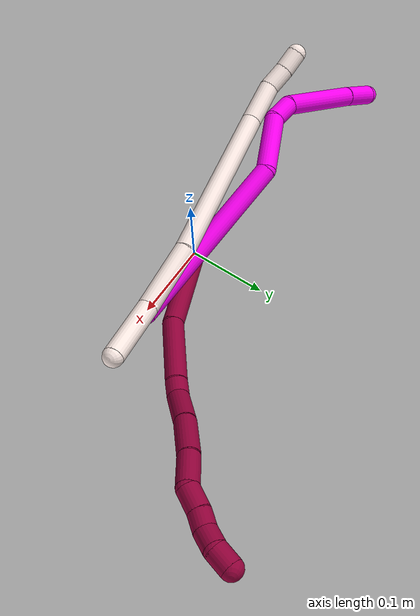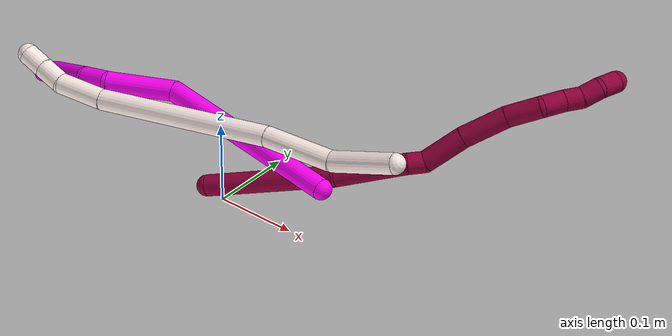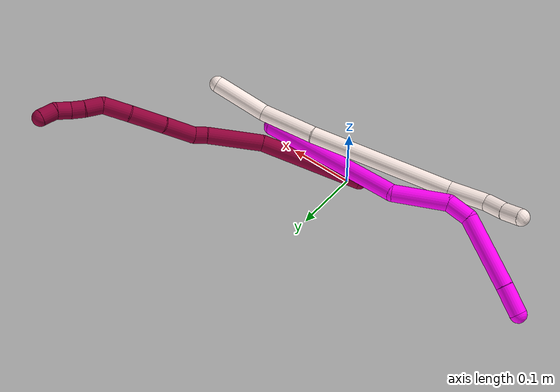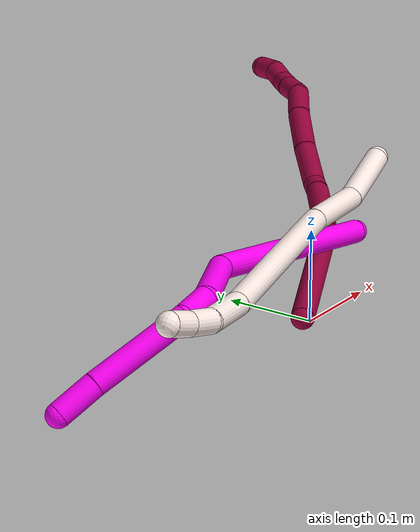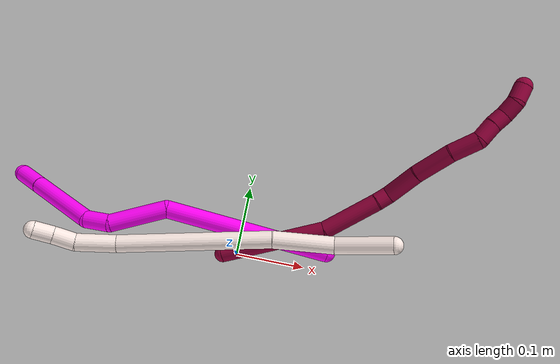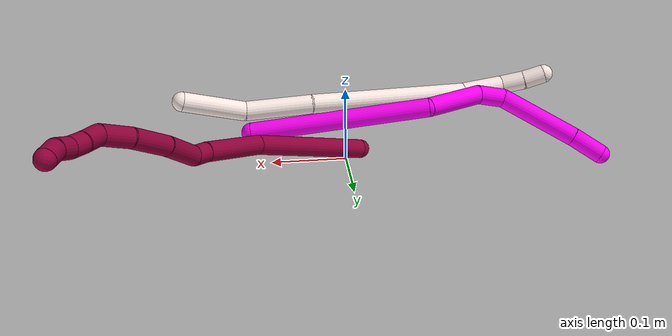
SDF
<sdf version="1.7">
 <world name="default">
  <model name="photoneo_s_sensor">
   <static>1</static>
   <pose>0 0 2 1.57079 1.57079 3.14159</pose>
   <link name="link">
    <inertial><mass>0.1</mass></inertial>
    <sensor name="sensor" type="depth">
     <update_rate>30</update_rate>
     <camera>
      <horizontal_fov>1.22</horizontal_fov>
      <image><width>1920</width><height>1200</height><format>B8G8R8</format></image>
      <clip><near>0.1</near><far>4</far></clip>
      <depth_camera><output>points</output></depth_camera>
     </camera>
     <plugin name="camera_plugin" filename="libgazebo_ros_depth_camera.so">
      <baseline>0.2</baseline>
      <alwaysOn>1</alwaysOn>
      <updateRate>0.0</updateRate>
      <cameraName>camera_ir</cameraName>
      <imageTopicName>/camera/color/image_raw</imageTopicName>
      <cameraInfoTopicName>/camera/color/camera_info</cameraInfoTopicName>
      <depthImageTopicName>/camera/depth/image_raw</depthImageTopicName>
      <depthImageCameraInfoTopicName>/camera/depth/camera_info</depthImageCameraInfoTopicName>
      <pointCloudTopicName>/camera/depth/points</pointCloudTopicName>
      <frameName>fr_optical</frameName>
      <pointCloudCutoff>0.1</pointCloudCutoff>
      <pointCloudCutoffMax>2.0</pointCloudCutoffMax>
      <distortionK1>0</distortionK1>
      <distortionK2>0</distortionK2>
      <distortionK3>0</distortionK3>
      <distortionT1>0</distortionT1>
      <distortionT2>0</distortionT2>
      <CxPrime>0</CxPrime>
      <Cx>0</Cx>
      <Cy>0</Cy>
      <focalLength>0</focalLength>
      <hackBaseline>0</hackBaseline>
     </plugin>
    </sensor>
   </link>
  </model>
  <model name="bin">
   <static>1</static>
   <link name="bottom">
    <collision name="collision-bottom">
     <pose>0 0 -0.01 0 -0 0</pose>
     <geometry><box><size>0.8 0.6 0.02</size></box></geometry>
     <surface>
      <friction><ode><mu>100</mu><mu2>100</mu2></ode></friction>
      <contact><collide_bitmask>65535</collide_bitmask></contact>
     </surface>
    </collision>
   </link>
   <link name="west_wall">
    <collision name="collision-west_wall">
     <pose>-0.41 0 0.1 0 -0 0</pose>
     <geometry><box><size>0.02 0.6 0.2</size></box></geometry>
     <surface>
      <friction><ode><mu>100</mu><mu2>100</mu2></ode></friction>
      <contact><collide_bitmask>65535</collide_bitmask></contact>
     </surface>
    </collision>
   </link>
   <link name="east_wall">
    <collision name="collision-east_wall">
     <pose>0.41 0 0.1 0 -0 0</pose>
     <geometry><box><size>0.02 0.6 0.2</size></box></geometry>
     <surface>
      <friction><ode><mu>100</mu><mu2>100</mu2></ode></friction>
      <contact><collide_bitmask>65535</collide_bitmask></contact>
     </surface>
    </collision>
   </link>
   <link name="south_wall">
    <collision name="collision-south_wall">
     <pose>0 -0.31 0.1 0 -0 0</pose>
     <geometry><box><size>0.8 0.02 0.2</size></box></geometry>
     <surface>
      <friction><ode><mu>100</mu><mu2>100</mu2></ode></friction>
      <contact><collide_bitmask>65535</collide_bitmask></contact>
     </surface>
    </collision>
   </link>
   <link name="north_wall">
    <collision name="collision-north_wall">
     <pose>0 0.31 0.1 0 -0 0</pose>
     <geometry><box><size>0.8 0.02 0.2</size></box></geometry>
     <surface>
      <friction><ode><mu>100</mu><mu2>100</mu2></ode></friction>
      <contact><collide_bitmask>65535</collide_bitmask></contact>
     </surface>
    </collision>
   </link>
  </model>
  <model name="8">
   <static>0</static>
   <link name="8">
    <collision name="collision-cylinder-e_1_1_4">
     <pose>0.016828 -0.002853 0.07586 0.037586 0.218145 0.004116</pose>
     <geometry><cylinder><radius>0.0125</radius><length>0.155513</length></cylinder></geometry>
     <surface>
      <friction><ode><mu>1.16</mu><mu2>1.16</mu2><slip1>0</slip1><slip2>0</slip2></ode></friction>
      <contact><ode><kp>1e+06</kp><kd>1</kd><max_vel>0</max_vel><min_depth>0.001</min_depth></ode></contact>
     </surface>
    </collision>
    <visual name="visual-cylinder-e_1_1_4">
     <pose>0.016828 -0.002853 0.07586 0.037586 0.218145 0.004116</pose>
     <geometry><cylinder><radius>0.0125</radius><length>0.155513</length></cylinder></geometry>
     <material><ambient>0.584314 0 0.227451 1</ambient></material>
    </visual>
    <collision name="collision-cylinder-e_2_4_5">
     <pose>0.040302 0.003805 0.191992 -0.231912 0.159247 -0.018588</pose>
     <geometry><cylinder><radius>0.0125</radius><length>0.08382</length></cylinder></geometry>
     <surface>
      <friction><ode><mu>1.16</mu><mu2>1.16</mu2><slip1>0</slip1><slip2>0</slip2></ode></friction>
      <contact><ode><kp>1e+06</kp><kd>1</kd><max_vel>0</max_vel><min_depth>0.001</min_depth></ode></contact>
     </surface>
    </collision>
    <visual name="visual-cylinder-e_2_4_5">
     <pose>0.040302 0.003805 0.191992 -0.231912 0.159247 -0.018588</pose>
     <geometry><cylinder><radius>0.0125</radius><length>0.08382</length></cylinder></geometry>
     <material><ambient>0.584314 0 0.227451 1</ambient></material>
    </visual>
    <collision name="collision-cylinder-e_3_5_6">
     <pose>0.0493 0.016608 0.241469 -0.343413 0.236095 -0.041128</pose>
     <geometry><cylinder><radius>0.0125</radius><length>0.02011</length></cylinder></geometry>
     <surface>
      <friction><ode><mu>1.16</mu><mu2>1.16</mu2><slip1>0</slip1><slip2>0</slip2></ode></friction>
      <contact><ode><kp>1e+06</kp><kd>1</kd><max_vel>0</max_vel><min_depth>0.001</min_depth></ode></contact>
     </surface>
    </collision>
    <visual name="visual-cylinder-e_3_5_6">
     <pose>0.0493 0.016608 0.241469 -0.343413 0.236095 -0.041128</pose>
     <geometry><cylinder><radius>0.0125</radius><length>0.02011</length></cylinder></geometry>
     <material><ambient>0.584314 0 0.227451 1</ambient></material>
    </visual>
    <collision name="collision-cylinder-e_4_6_7">
     <pose>0.045306 0.023976 0.275338 -0.163825 -0.248577 0.020512</pose>
     <geometry><cylinder><radius>0.0125</radius><length>0.051583</length></cylinder></geometry>
     <surface>
      <friction><ode><mu>1.16</mu><mu2>1.16</mu2><slip1>0</slip1><slip2>0</slip2></ode></friction>
      <contact><ode><kp>1e+06</kp><kd>1</kd><max_vel>0</max_vel><min_depth>0.001</min_depth></ode></contact>
     </surface>
    </collision>
    <visual name="visual-cylinder-e_4_6_7">
     <pose>0.045306 0.023976 0.275338 -0.163825 -0.248577 0.020512</pose>
     <geometry><cylinder><radius>0.0125</radius><length>0.051583</length></cylinder></geometry>
     <material><ambient>0.584314 0 0.227451 1</ambient></material>
    </visual>
    <collision name="collision-cylinder-e_5_7_8">
     <pose>0.035735 0.031633 0.326872 -0.132435 -0.118427 0.007863</pose>
     <geometry><cylinder><radius>0.0125</radius><length>0.054596</length></cylinder></geometry>
     <surface>
      <friction><ode><mu>1.16</mu><mu2>1.16</mu2><slip1>0</slip1><slip2>0</slip2></ode></friction>
      <contact><ode><kp>1e+06</kp><kd>1</kd><max_vel>0</max_vel><min_depth>0.001</min_depth></ode></contact>
     </surface>
    </collision>
    <visual name="visual-cylinder-e_5_7_8">
     <pose>0.035735 0.031633 0.326872 -0.132435 -0.118427 0.007863</pose>
     <geometry><cylinder><radius>0.0125</radius><length>0.054596</length></cylinder></geometry>
     <material><ambient>0.584314 0 0.227451 1</ambient></material>
    </visual>
    <collision name="collision-cylinder-e_6_8_9">
     <pose>0.033373 0.03705 0.37397 -0.090574 0.04246 -0.001924</pose>
     <geometry><cylinder><radius>0.0125</radius><length>0.040659</length></cylinder></geometry>
     <surface>
      <friction><ode><mu>1.16</mu><mu2>1.16</mu2><slip1>0</slip1><slip2>0</slip2></ode></friction>
      <contact><ode><kp>1e+06</kp><kd>1</kd><max_vel>0</max_vel><min_depth>0.001</min_depth></ode></contact>
     </surface>
    </collision>
    <visual name="visual-cylinder-e_6_8_9">
     <pose>0.033373 0.03705 0.37397 -0.090574 0.04246 -0.001924</pose>
     <geometry><cylinder><radius>0.0125</radius><length>0.040659</length></cylinder></geometry>
     <material><ambient>0.584314 0 0.227451 1</ambient></material>
    </visual>
    <collision name="collision-cylinder-e_7_9_10">
     <pose>0.035427 0.046542 0.405087 -0.61275 0.089269 -0.028256</pose>
     <geometry><cylinder><radius>0.0125</radius><length>0.026727</length></cylinder></geometry>
     <surface>
      <friction><ode><mu>1.16</mu><mu2>1.16</mu2><slip1>0</slip1><slip2>0</slip2></ode></friction>
      <contact><ode><kp>1e+06</kp><kd>1</kd><max_vel>0</max_vel><min_depth>0.001</min_depth></ode></contact>
     </surface>
    </collision>
    <visual name="visual-cylinder-e_7_9_10">
     <pose>0.035427 0.046542 0.405087 -0.61275 0.089269 -0.028256</pose>
     <geometry><cylinder><radius>0.0125</radius><length>0.026727</length></cylinder></geometry>
     <material><ambient>0.584314 0 0.227451 1</ambient></material>
    </visual>
    <collision name="collision-cylinder-e_8_10_11">
     <pose>0.038386 0.058998 0.42488 -0.494512 0.172976 -0.043765</pose>
     <geometry><cylinder><radius>0.0125</radius><length>0.02054</length></cylinder></geometry>
     <surface>
      <friction><ode><mu>1.16</mu><mu2>1.16</mu2><slip1>0</slip1><slip2>0</slip2></ode></friction>
      <contact><ode><kp>1e+06</kp><kd>1</kd><max_vel>0</max_vel><min_depth>0.001</min_depth></ode></contact>
     </surface>
    </collision>
    <visual name="visual-cylinder-e_8_10_11">
     <pose>0.038386 0.058998 0.42488 -0.494512 0.172976 -0.043765</pose>
     <geometry><cylinder><radius>0.0125</radius><length>0.02054</length></cylinder></geometry>
     <material><ambient>0.584314 0 0.227451 1</ambient></material>
    </visual>
    <collision name="collision-cylinder-e_9_11_12">
     <pose>0.038658 0.069035 0.443876 -0.478579 -0.130802 0.031954</pose>
     <geometry><cylinder><radius>0.0125</radius><length>0.022934</length></cylinder></geometry>
     <surface>
      <friction><ode><mu>1.16</mu><mu2>1.16</mu2><slip1>0</slip1><slip2>0</slip2></ode></friction>
      <contact><ode><kp>1e+06</kp><kd>1</kd><max_vel>0</max_vel><min_depth>0.001</min_depth></ode></contact>
     </surface>
    </collision>
    <visual name="visual-cylinder-e_9_11_12">
     <pose>0.038658 0.069035 0.443876 -0.478579 -0.130802 0.031954</pose>
     <geometry><cylinder><radius>0.0125</radius><length>0.022934</length></cylinder></geometry>
     <material><ambient>0.584314 0 0.227451 1</ambient></material>
    </visual>
    <collision name="collision-cylinder-e_10_12_2">
     <pose>0.037378 0.083232 0.461578 -0.866732 0.018292 -0.008464</pose>
     <geometry><cylinder><radius>0.0125</radius><length>0.023518</length></cylinder></geometry>
     <surface>
      <friction><ode><mu>1.16</mu><mu2>1.16</mu2><slip1>0</slip1><slip2>0</slip2></ode></friction>
      <contact><ode><kp>1e+06</kp><kd>1</kd><max_vel>0</max_vel><min_depth>0.001</min_depth></ode></contact>
     </surface>
    </collision>
    <visual name="visual-cylinder-e_10_12_2">
     <pose>0.037378 0.083232 0.461578 -0.866732 0.018292 -0.008464</pose>
     <geometry><cylinder><radius>0.0125</radius><length>0.023518</length></cylinder></geometry>
     <material><ambient>0.584314 0 0.227451 1</ambient></material>
    </visual>
    <collision name="collision-sphere-2">
     <pose>0.037593 0.092194 0.469189 0 -0 0</pose>
     <geometry><sphere><radius>0.0125</radius></sphere></geometry>
     <surface>
      <friction><ode><mu>1.16</mu><mu2>1.16</mu2><slip1>0</slip1><slip2>0</slip2></ode></friction>
      <contact><ode><kp>1e+06</kp><kd>1</kd><max_vel>0</max_vel><min_depth>0.001</min_depth></ode></contact>
     </surface>
    </collision>
    <visual name="visual-sphere-2">
     <pose>0.037593 0.092194 0.469189 0 -0 0</pose>
     <geometry><sphere><radius>0.0125</radius></sphere></geometry>
     <material><ambient>0.584314 0 0.227451 1</ambient></material>
    </visual>
    <collision name="collision-sphere-12">
     <pose>0.037163 0.074271 0.453968 0 -0 0</pose>
     <geometry><sphere><radius>0.0125</radius></sphere></geometry>
     <surface>
      <friction><ode><mu>1.16</mu><mu2>1.16</mu2><slip1>0</slip1><slip2>0</slip2></ode></friction>
      <contact><ode><kp>1e+06</kp><kd>1</kd><max_vel>0</max_vel><min_depth>0.001</min_depth></ode></contact>
     </surface>
    </collision>
    <visual name="visual-sphere-12">
     <pose>0.037163 0.074271 0.453968 0 -0 0</pose>
     <geometry><sphere><radius>0.0125</radius></sphere></geometry>
     <material><ambient>0.584314 0 0.227451 1</ambient></material>
    </visual>
    <collision name="collision-sphere-11">
     <pose>0.040154 0.063799 0.433784 0 -0 0</pose>
     <geometry><sphere><radius>0.0125</radius></sphere></geometry>
     <surface>
      <friction><ode><mu>1.16</mu><mu2>1.16</mu2><slip1>0</slip1><slip2>0</slip2></ode></friction>
      <contact><ode><kp>1e+06</kp><kd>1</kd><max_vel>0</max_vel><min_depth>0.001</min_depth></ode></contact>
     </surface>
    </collision>
    <visual name="visual-sphere-11">
     <pose>0.040154 0.063799 0.433784 0 -0 0</pose>
     <geometry><sphere><radius>0.0125</radius></sphere></geometry>
     <material><ambient>0.584314 0 0.227451 1</ambient></material>
    </visual>
    <collision name="collision-sphere-10">
     <pose>0.036619 0.054197 0.415975 0 -0 0</pose>
     <geometry><sphere><radius>0.0125</radius></sphere></geometry>
     <surface>
      <friction><ode><mu>1.16</mu><mu2>1.16</mu2><slip1>0</slip1><slip2>0</slip2></ode></friction>
      <contact><ode><kp>1e+06</kp><kd>1</kd><max_vel>0</max_vel><min_depth>0.001</min_depth></ode></contact>
     </surface>
    </collision>
    <visual name="visual-sphere-10">
     <pose>0.036619 0.054197 0.415975 0 -0 0</pose>
     <geometry><sphere><radius>0.0125</radius></sphere></geometry>
     <material><ambient>0.584314 0 0.227451 1</ambient></material>
    </visual>
    <collision name="collision-sphere-9">
     <pose>0.034236 0.038887 0.394198 0 -0 0</pose>
     <geometry><sphere><radius>0.0125</radius></sphere></geometry>
     <surface>
      <friction><ode><mu>1.16</mu><mu2>1.16</mu2><slip1>0</slip1><slip2>0</slip2></ode></friction>
      <contact><ode><kp>1e+06</kp><kd>1</kd><max_vel>0</max_vel><min_depth>0.001</min_depth></ode></contact>
     </surface>
    </collision>
    <visual name="visual-sphere-9">
     <pose>0.034236 0.038887 0.394198 0 -0 0</pose>
     <geometry><sphere><radius>0.0125</radius></sphere></geometry>
     <material><ambient>0.584314 0 0.227451 1</ambient></material>
    </visual>
    <collision name="collision-sphere-4">
     <pose>0.033656 -0.005705 0.15172 0 -0 0</pose>
     <geometry><sphere><radius>0.0125</radius></sphere></geometry>
     <surface>
      <friction><ode><mu>1.16</mu><mu2>1.16</mu2><slip1>0</slip1><slip2>0</slip2></ode></friction>
      <contact><ode><kp>1e+06</kp><kd>1</kd><max_vel>0</max_vel><min_depth>0.001</min_depth></ode></contact>
     </surface>
    </collision>
    <visual name="visual-sphere-4">
     <pose>0.033656 -0.005705 0.15172 0 -0 0</pose>
     <geometry><sphere><radius>0.0125</radius></sphere></geometry>
     <material><ambient>0.584314 0 0.227451 1</ambient></material>
    </visual>
    <collision name="collision-sphere-1">
     <geometry><sphere><radius>0.0125</radius></sphere></geometry>
     <surface>
      <friction><ode><mu>1.16</mu><mu2>1.16</mu2><slip1>0</slip1><slip2>0</slip2></ode></friction>
      <contact><ode><kp>1e+06</kp><kd>1</kd><max_vel>0</max_vel><min_depth>0.001</min_depth></ode></contact>
     </surface>
    </collision>
    <visual name="visual-sphere-1">
     <geometry><sphere><radius>0.0125</radius></sphere></geometry>
     <material><ambient>0.584314 0 0.227451 1</ambient></material>
    </visual>
    <collision name="collision-sphere-8">
     <pose>0.03251 0.035212 0.353742 0 -0 0</pose>
     <geometry><sphere><radius>0.0125</radius></sphere></geometry>
     <surface>
      <friction><ode><mu>1.16</mu><mu2>1.16</mu2><slip1>0</slip1><slip2>0</slip2></ode></friction>
      <contact><ode><kp>1e+06</kp><kd>1</kd><max_vel>0</max_vel><min_depth>0.001</min_depth></ode></contact>
     </surface>
    </collision>
    <visual name="visual-sphere-8">
     <pose>0.03251 0.035212 0.353742 0 -0 0</pose>
     <geometry><sphere><radius>0.0125</radius></sphere></geometry>
     <material><ambient>0.584314 0 0.227451 1</ambient></material>
    </visual>
    <collision name="collision-sphere-5">
     <pose>0.046948 0.013316 0.232264 0 -0 0</pose>
     <geometry><sphere><radius>0.0125</radius></sphere></geometry>
     <surface>
      <friction><ode><mu>1.16</mu><mu2>1.16</mu2><slip1>0</slip1><slip2>0</slip2></ode></friction>
      <contact><ode><kp>1e+06</kp><kd>1</kd><max_vel>0</max_vel><min_depth>0.001</min_depth></ode></contact>
     </surface>
    </collision>
    <visual name="visual-sphere-5">
     <pose>0.046948 0.013316 0.232264 0 -0 0</pose>
     <geometry><sphere><radius>0.0125</radius></sphere></geometry>
     <material><ambient>0.584314 0 0.227451 1</ambient></material>
    </visual>
    <collision name="collision-sphere-6">
     <pose>0.051651 0.019899 0.250674 0 -0 0</pose>
     <geometry><sphere><radius>0.0125</radius></sphere></geometry>
     <surface>
      <friction><ode><mu>1.16</mu><mu2>1.16</mu2><slip1>0</slip1><slip2>0</slip2></ode></friction>
      <contact><ode><kp>1e+06</kp><kd>1</kd><max_vel>0</max_vel><min_depth>0.001</min_depth></ode></contact>
     </surface>
    </collision>
    <visual name="visual-sphere-6">
     <pose>0.051651 0.019899 0.250674 0 -0 0</pose>
     <geometry><sphere><radius>0.0125</radius></sphere></geometry>
     <material><ambient>0.584314 0 0.227451 1</ambient></material>
    </visual>
    <collision name="collision-sphere-7">
     <pose>0.038961 0.028054 0.300002 0 -0 0</pose>
     <geometry><sphere><radius>0.0125</radius></sphere></geometry>
     <surface>
      <friction><ode><mu>1.16</mu><mu2>1.16</mu2><slip1>0</slip1><slip2>0</slip2></ode></friction>
      <contact><ode><kp>1e+06</kp><kd>1</kd><max_vel>0</max_vel><min_depth>0.001</min_depth></ode></contact>
     </surface>
    </collision>
    <visual name="visual-sphere-7">
     <pose>0.038961 0.028054 0.300002 0 -0 0</pose>
     <geometry><sphere><radius>0.0125</radius></sphere></geometry>
     <material><ambient>0.584314 0 0.227451 1</ambient></material>
    </visual>
    <inertial>
     <pose>0.032265 0.021352 0.241178 0 -0 0</pose>
     <mass>0.5</mass>
     <inertia>
      <ixx>0.000412</ixx>
      <ixy>0</ixy>
      <ixz>0</ixz>
      <iyy>0.000422</iyy>
      <iyz>0</iyz>
      <izz>-4.7e-05</izz>
     </inertia>
    </inertial>
   </link>
   <pose>-0.019706 -0.003827 0.012171 -0.694116 0.966914 -0.251221</pose>
  </model>
  <model name="10">
   <static>0</static>
   <link name="10">
    <collision name="collision-cylinder-e_1_1_4">
     <pose>-0.041784 0.019411 0.107085 -0.179324 -0.366579 0.033328</pose>
     <geometry><cylinder><radius>0.0125</radius><length>0.233151</length></cylinder></geometry>
     <surface>
      <friction><ode><mu>1.16</mu><mu2>1.16</mu2><slip1>0</slip1><slip2>0</slip2></ode></friction>
      <contact><ode><kp>1e+06</kp><kd>1</kd><max_vel>0</max_vel><min_depth>0.001</min_depth></ode></contact>
     </surface>
    </collision>
    <visual name="visual-cylinder-e_1_1_4">
     <pose>-0.041784 0.019411 0.107085 -0.179324 -0.366579 0.033328</pose>
     <geometry><cylinder><radius>0.0125</radius><length>0.233151</length></cylinder></geometry>
     <material><ambient>1 0 0.964706 1</ambient></material>
    </visual>
    <collision name="collision-cylinder-e_2_4_5">
     <pose>-0.107161 0.06016 0.239496 -0.700144 -0.619047 0.232473</pose>
     <geometry><cylinder><radius>0.0125</radius><length>0.081322</length></cylinder></geometry>
     <surface>
      <friction><ode><mu>1.16</mu><mu2>1.16</mu2><slip1>0</slip1><slip2>0</slip2></ode></friction>
      <contact><ode><kp>1e+06</kp><kd>1</kd><max_vel>0</max_vel><min_depth>0.001</min_depth></ode></contact>
     </surface>
    </collision>
    <visual name="visual-cylinder-e_2_4_5">
     <pose>-0.107161 0.06016 0.239496 -0.700144 -0.619047 0.232473</pose>
     <geometry><cylinder><radius>0.0125</radius><length>0.081322</length></cylinder></geometry>
     <material><ambient>1 0 0.964706 1</ambient></material>
    </visual>
    <collision name="collision-cylinder-e_3_5_6">
     <pose>-0.134021 0.089405 0.280275 -0.472952 -0.185968 0.044938</pose>
     <geometry><cylinder><radius>0.0125</radius><length>0.035329</length></cylinder></geometry>
     <surface>
      <friction><ode><mu>1.16</mu><mu2>1.16</mu2><slip1>0</slip1><slip2>0</slip2></ode></friction>
      <contact><ode><kp>1e+06</kp><kd>1</kd><max_vel>0</max_vel><min_depth>0.001</min_depth></ode></contact>
     </surface>
    </collision>
    <visual name="visual-cylinder-e_3_5_6">
     <pose>-0.134021 0.089405 0.280275 -0.472952 -0.185968 0.044938</pose>
     <geometry><cylinder><radius>0.0125</radius><length>0.035329</length></cylinder></geometry>
     <material><ambient>1 0 0.964706 1</ambient></material>
    </visual>
    <collision name="collision-cylinder-e_4_6_7">
     <pose>-0.123746 0.116149 0.344016 -0.371935 0.255556 -0.048335</pose>
     <geometry><cylinder><radius>0.0125</radius><length>0.107141</length></cylinder></geometry>
     <surface>
      <friction><ode><mu>1.16</mu><mu2>1.16</mu2><slip1>0</slip1><slip2>0</slip2></ode></friction>
      <contact><ode><kp>1e+06</kp><kd>1</kd><max_vel>0</max_vel><min_depth>0.001</min_depth></ode></contact>
     </surface>
    </collision>
    <visual name="visual-cylinder-e_4_6_7">
     <pose>-0.123746 0.116149 0.344016 -0.371935 0.255556 -0.048335</pose>
     <geometry><cylinder><radius>0.0125</radius><length>0.107141</length></cylinder></geometry>
     <material><ambient>1 0 0.964706 1</ambient></material>
    </visual>
    <collision name="collision-cylinder-e_5_7_2">
     <pose>-0.103925 0.14355 0.411029 -0.428928 0.295972 -0.064919</pose>
     <geometry><cylinder><radius>0.0125</radius><length>0.043057</length></cylinder></geometry>
     <surface>
      <friction><ode><mu>1.16</mu><mu2>1.16</mu2><slip1>0</slip1><slip2>0</slip2></ode></friction>
      <contact><ode><kp>1e+06</kp><kd>1</kd><max_vel>0</max_vel><min_depth>0.001</min_depth></ode></contact>
     </surface>
    </collision>
    <visual name="visual-cylinder-e_5_7_2">
     <pose>-0.103925 0.14355 0.411029 -0.428928 0.295972 -0.064919</pose>
     <geometry><cylinder><radius>0.0125</radius><length>0.043057</length></cylinder></geometry>
     <material><ambient>1 0 0.964706 1</ambient></material>
    </visual>
    <collision name="collision-sphere-2">
     <pose>-0.097646 0.152114 0.429756 0 -0 0</pose>
     <geometry><sphere><radius>0.0125</radius></sphere></geometry>
     <surface>
      <friction><ode><mu>1.16</mu><mu2>1.16</mu2><slip1>0</slip1><slip2>0</slip2></ode></friction>
      <contact><ode><kp>1e+06</kp><kd>1</kd><max_vel>0</max_vel><min_depth>0.001</min_depth></ode></contact>
     </surface>
    </collision>
    <visual name="visual-sphere-2">
     <pose>-0.097646 0.152114 0.429756 0 -0 0</pose>
     <geometry><sphere><radius>0.0125</radius></sphere></geometry>
     <material><ambient>1 0 0.964706 1</ambient></material>
    </visual>
    <collision name="collision-sphere-7">
     <pose>-0.110204 0.134985 0.392303 0 -0 0</pose>
     <geometry><sphere><radius>0.0125</radius></sphere></geometry>
     <surface>
      <friction><ode><mu>1.16</mu><mu2>1.16</mu2><slip1>0</slip1><slip2>0</slip2></ode></friction>
      <contact><ode><kp>1e+06</kp><kd>1</kd><max_vel>0</max_vel><min_depth>0.001</min_depth></ode></contact>
     </surface>
    </collision>
    <visual name="visual-sphere-7">
     <pose>-0.110204 0.134985 0.392303 0 -0 0</pose>
     <geometry><sphere><radius>0.0125</radius></sphere></geometry>
     <material><ambient>1 0 0.964706 1</ambient></material>
    </visual>
    <collision name="collision-sphere-6">
     <pose>-0.137287 0.097313 0.295729 0 -0 0</pose>
     <geometry><sphere><radius>0.0125</radius></sphere></geometry>
     <surface>
      <friction><ode><mu>1.16</mu><mu2>1.16</mu2><slip1>0</slip1><slip2>0</slip2></ode></friction>
      <contact><ode><kp>1e+06</kp><kd>1</kd><max_vel>0</max_vel><min_depth>0.001</min_depth></ode></contact>
     </surface>
    </collision>
    <visual name="visual-sphere-6">
     <pose>-0.137287 0.097313 0.295729 0 -0 0</pose>
     <geometry><sphere><radius>0.0125</radius></sphere></geometry>
     <material><ambient>1 0 0.964706 1</ambient></material>
    </visual>
    <collision name="collision-sphere-5">
     <pose>-0.130755 0.081498 0.264821 0 -0 0</pose>
     <geometry><sphere><radius>0.0125</radius></sphere></geometry>
     <surface>
      <friction><ode><mu>1.16</mu><mu2>1.16</mu2><slip1>0</slip1><slip2>0</slip2></ode></friction>
      <contact><ode><kp>1e+06</kp><kd>1</kd><max_vel>0</max_vel><min_depth>0.001</min_depth></ode></contact>
     </surface>
    </collision>
    <visual name="visual-sphere-5">
     <pose>-0.130755 0.081498 0.264821 0 -0 0</pose>
     <geometry><sphere><radius>0.0125</radius></sphere></geometry>
     <material><ambient>1 0 0.964706 1</ambient></material>
    </visual>
    <collision name="collision-sphere-1">
     <geometry><sphere><radius>0.0125</radius></sphere></geometry>
     <surface>
      <friction><ode><mu>1.16</mu><mu2>1.16</mu2><slip1>0</slip1><slip2>0</slip2></ode></friction>
      <contact><ode><kp>1e+06</kp><kd>1</kd><max_vel>0</max_vel><min_depth>0.001</min_depth></ode></contact>
     </surface>
    </collision>
    <visual name="visual-sphere-1">
     <geometry><sphere><radius>0.0125</radius></sphere></geometry>
     <material><ambient>1 0 0.964706 1</ambient></material>
    </visual>
    <collision name="collision-sphere-4">
     <pose>-0.083567 0.038823 0.21417 0 -0 0</pose>
     <geometry><sphere><radius>0.0125</radius></sphere></geometry>
     <surface>
      <friction><ode><mu>1.16</mu><mu2>1.16</mu2><slip1>0</slip1><slip2>0</slip2></ode></friction>
      <contact><ode><kp>1e+06</kp><kd>1</kd><max_vel>0</max_vel><min_depth>0.001</min_depth></ode></contact>
     </surface>
    </collision>
    <visual name="visual-sphere-4">
     <pose>-0.083567 0.038823 0.21417 0 -0 0</pose>
     <geometry><sphere><radius>0.0125</radius></sphere></geometry>
     <material><ambient>1 0 0.964706 1</ambient></material>
    </visual>
    <inertial>
     <pose>-0.081848 0.062404 0.217802 0 -0 0</pose>
     <mass>0.5</mass>
     <inertia>
      <ixx>0.001177</ixx>
      <ixy>0</ixy>
      <ixz>0</ixz>
      <iyy>0.00125</iyy>
      <iyz>0</iyz>
      <izz>0.000169</izz>
     </inertia>
    </inertial>
   </link>
   <pose>0.125731 0.02425 0.056368 -1.5657 0.741326 1.12607</pose>
  </model>
  <model name="11">
   <static>0</static>
   <link name="11">
    <collision name="collision-cylinder-e_1_1_4">
     <pose>-0.014404 0.004024 0.038013 -0.105471 -0.360368 0.01923</pose>
     <geometry><cylinder><radius>0.0125</radius><length>0.081699</length></cylinder></geometry>
     <surface>
      <friction><ode><mu>1.16</mu><mu2>1.16</mu2><slip1>0</slip1><slip2>0</slip2></ode></friction>
      <contact><ode><kp>1e+06</kp><kd>1</kd><max_vel>0</max_vel><min_depth>0.001</min_depth></ode></contact>
     </surface>
    </collision>
    <visual name="visual-cylinder-e_1_1_4">
     <pose>-0.014404 0.004024 0.038013 -0.105471 -0.360368 0.01923</pose>
     <geometry><cylinder><radius>0.0125</radius><length>0.081699</length></cylinder></geometry>
     <material><ambient>1 0.933333 0.909804 1</ambient></material>
    </visual>
    <collision name="collision-cylinder-e_2_4_5">
     <pose>-0.055327 0.009492 0.109938 -0.04253 -0.66323 0.014646</pose>
     <geometry><cylinder><radius>0.0125</radius><length>0.086146</length></cylinder></geometry>
     <surface>
      <friction><ode><mu>1.16</mu><mu2>1.16</mu2><slip1>0</slip1><slip2>0</slip2></ode></friction>
      <contact><ode><kp>1e+06</kp><kd>1</kd><max_vel>0</max_vel><min_depth>0.001</min_depth></ode></contact>
     </surface>
    </collision>
    <visual name="visual-cylinder-e_2_4_5">
     <pose>-0.055327 0.009492 0.109938 -0.04253 -0.66323 0.014646</pose>
     <geometry><cylinder><radius>0.0125</radius><length>0.086146</length></cylinder></geometry>
     <material><ambient>1 0.933333 0.909804 1</ambient></material>
    </visual>
    <collision name="collision-cylinder-e_3_5_6">
     <pose>-0.140662 0.026714 0.232792 -0.175581 -0.577158 0.052247</pose>
     <geometry><cylinder><radius>0.0125</radius><length>0.215583</length></cylinder></geometry>
     <surface>
      <friction><ode><mu>1.16</mu><mu2>1.16</mu2><slip1>0</slip1><slip2>0</slip2></ode></friction>
      <contact><ode><kp>1e+06</kp><kd>1</kd><max_vel>0</max_vel><min_depth>0.001</min_depth></ode></contact>
     </surface>
    </collision>
    <visual name="visual-cylinder-e_3_5_6">
     <pose>-0.140662 0.026714 0.232792 -0.175581 -0.577158 0.052247</pose>
     <geometry><cylinder><radius>0.0125</radius><length>0.215583</length></cylinder></geometry>
     <material><ambient>1 0.933333 0.909804 1</ambient></material>
    </visual>
    <collision name="collision-cylinder-e_4_6_7">
     <pose>-0.218212 0.04524 0.343033 -0.128246 -0.717331 0.048134</pose>
     <geometry><cylinder><radius>0.0125</radius><length>0.056997</length></cylinder></geometry>
     <surface>
      <friction><ode><mu>1.16</mu><mu2>1.16</mu2><slip1>0</slip1><slip2>0</slip2></ode></friction>
      <contact><ode><kp>1e+06</kp><kd>1</kd><max_vel>0</max_vel><min_depth>0.001</min_depth></ode></contact>
     </surface>
    </collision>
    <visual name="visual-cylinder-e_4_6_7">
     <pose>-0.218212 0.04524 0.343033 -0.128246 -0.717331 0.048134</pose>
     <geometry><cylinder><radius>0.0125</radius><length>0.056997</length></cylinder></geometry>
     <material><ambient>1 0.933333 0.909804 1</ambient></material>
    </visual>
    <collision name="collision-cylinder-e_5_7_8">
     <pose>-0.248786 0.045211 0.374304 0.271374 -0.852391 -0.123814</pose>
     <geometry><cylinder><radius>0.0125</radius><length>0.031454</length></cylinder></geometry>
     <surface>
      <friction><ode><mu>1.16</mu><mu2>1.16</mu2><slip1>0</slip1><slip2>0</slip2></ode></friction>
      <contact><ode><kp>1e+06</kp><kd>1</kd><max_vel>0</max_vel><min_depth>0.001</min_depth></ode></contact>
     </surface>
    </collision>
    <visual name="visual-cylinder-e_5_7_8">
     <pose>-0.248786 0.045211 0.374304 0.271374 -0.852391 -0.123814</pose>
     <geometry><cylinder><radius>0.0125</radius><length>0.031454</length></cylinder></geometry>
     <material><ambient>1 0.933333 0.909804 1</ambient></material>
    </visual>
    <collision name="collision-cylinder-e_6_8_2">
     <pose>-0.272038 0.04077 0.39232 0.204356 -0.946906 -0.104965</pose>
     <geometry><cylinder><radius>0.0125</radius><length>0.028121</length></cylinder></geometry>
     <surface>
      <friction><ode><mu>1.16</mu><mu2>1.16</mu2><slip1>0</slip1><slip2>0</slip2></ode></friction>
      <contact><ode><kp>1e+06</kp><kd>1</kd><max_vel>0</max_vel><min_depth>0.001</min_depth></ode></contact>
     </surface>
    </collision>
    <visual name="visual-cylinder-e_6_8_2">
     <pose>-0.272038 0.04077 0.39232 0.204356 -0.946906 -0.104965</pose>
     <geometry><cylinder><radius>0.0125</radius><length>0.028121</length></cylinder></geometry>
     <material><ambient>1 0.933333 0.909804 1</ambient></material>
    </visual>
    <collision name="collision-sphere-2">
     <pose>-0.283449 0.039103 0.400363 0 -0 0</pose>
     <geometry><sphere><radius>0.0125</radius></sphere></geometry>
     <surface>
      <friction><ode><mu>1.16</mu><mu2>1.16</mu2><slip1>0</slip1><slip2>0</slip2></ode></friction>
      <contact><ode><kp>1e+06</kp><kd>1</kd><max_vel>0</max_vel><min_depth>0.001</min_depth></ode></contact>
     </surface>
    </collision>
    <visual name="visual-sphere-2">
     <pose>-0.283449 0.039103 0.400363 0 -0 0</pose>
     <geometry><sphere><radius>0.0125</radius></sphere></geometry>
     <material><ambient>1 0.933333 0.909804 1</ambient></material>
    </visual>
    <collision name="collision-sphere-4">
     <pose>-0.028809 0.008048 0.076027 0 -0 0</pose>
     <geometry><sphere><radius>0.0125</radius></sphere></geometry>
     <surface>
      <friction><ode><mu>1.16</mu><mu2>1.16</mu2><slip1>0</slip1><slip2>0</slip2></ode></friction>
      <contact><ode><kp>1e+06</kp><kd>1</kd><max_vel>0</max_vel><min_depth>0.001</min_depth></ode></contact>
     </surface>
    </collision>
    <visual name="visual-sphere-4">
     <pose>-0.028809 0.008048 0.076027 0 -0 0</pose>
     <geometry><sphere><radius>0.0125</radius></sphere></geometry>
     <material><ambient>1 0.933333 0.909804 1</ambient></material>
    </visual>
    <collision name="collision-sphere-1">
     <geometry><sphere><radius>0.0125</radius></sphere></geometry>
     <surface>
      <friction><ode><mu>1.16</mu><mu2>1.16</mu2><slip1>0</slip1><slip2>0</slip2></ode></friction>
      <contact><ode><kp>1e+06</kp><kd>1</kd><max_vel>0</max_vel><min_depth>0.001</min_depth></ode></contact>
     </surface>
    </collision>
    <visual name="visual-sphere-1">
     <geometry><sphere><radius>0.0125</radius></sphere></geometry>
     <material><ambient>1 0.933333 0.909804 1</ambient></material>
    </visual>
    <collision name="collision-sphere-8">
     <pose>-0.260626 0.042437 0.384276 0 -0 0</pose>
     <geometry><sphere><radius>0.0125</radius></sphere></geometry>
     <surface>
      <friction><ode><mu>1.16</mu><mu2>1.16</mu2><slip1>0</slip1><slip2>0</slip2></ode></friction>
      <contact><ode><kp>1e+06</kp><kd>1</kd><max_vel>0</max_vel><min_depth>0.001</min_depth></ode></contact>
     </surface>
    </collision>
    <visual name="visual-sphere-8">
     <pose>-0.260626 0.042437 0.384276 0 -0 0</pose>
     <geometry><sphere><radius>0.0125</radius></sphere></geometry>
     <material><ambient>1 0.933333 0.909804 1</ambient></material>
    </visual>
    <collision name="collision-sphere-5">
     <pose>-0.081846 0.010935 0.143849 0 -0 0</pose>
     <geometry><sphere><radius>0.0125</radius></sphere></geometry>
     <surface>
      <friction><ode><mu>1.16</mu><mu2>1.16</mu2><slip1>0</slip1><slip2>0</slip2></ode></friction>
      <contact><ode><kp>1e+06</kp><kd>1</kd><max_vel>0</max_vel><min_depth>0.001</min_depth></ode></contact>
     </surface>
    </collision>
    <visual name="visual-sphere-5">
     <pose>-0.081846 0.010935 0.143849 0 -0 0</pose>
     <geometry><sphere><radius>0.0125</radius></sphere></geometry>
     <material><ambient>1 0.933333 0.909804 1</ambient></material>
    </visual>
    <collision name="collision-sphere-6">
     <pose>-0.199478 0.042493 0.321734 0 -0 0</pose>
     <geometry><sphere><radius>0.0125</radius></sphere></geometry>
     <surface>
      <friction><ode><mu>1.16</mu><mu2>1.16</mu2><slip1>0</slip1><slip2>0</slip2></ode></friction>
      <contact><ode><kp>1e+06</kp><kd>1</kd><max_vel>0</max_vel><min_depth>0.001</min_depth></ode></contact>
     </surface>
    </collision>
    <visual name="visual-sphere-6">
     <pose>-0.199478 0.042493 0.321734 0 -0 0</pose>
     <geometry><sphere><radius>0.0125</radius></sphere></geometry>
     <material><ambient>1 0.933333 0.909804 1</ambient></material>
    </visual>
    <collision name="collision-sphere-7">
     <pose>-0.236946 0.047986 0.364332 0 -0 0</pose>
     <geometry><sphere><radius>0.0125</radius></sphere></geometry>
     <surface>
      <friction><ode><mu>1.16</mu><mu2>1.16</mu2><slip1>0</slip1><slip2>0</slip2></ode></friction>
      <contact><ode><kp>1e+06</kp><kd>1</kd><max_vel>0</max_vel><min_depth>0.001</min_depth></ode></contact>
     </surface>
    </collision>
    <visual name="visual-sphere-7">
     <pose>-0.236946 0.047986 0.364332 0 -0 0</pose>
     <geometry><sphere><radius>0.0125</radius></sphere></geometry>
     <material><ambient>1 0.933333 0.909804 1</ambient></material>
    </visual>
    <inertial>
     <pose>-0.12836 0.024105 0.210239 0 -0 0</pose>
     <mass>0.5</mass>
     <inertia><ixx>0.00083</ixx><ixy>0</ixy><ixz>0</ixz><iyy>0.001004</iyy><iyz>0</iyz><izz>0.00043</izz></inertia>
    </inertial>
   </link>
   <pose>0.209452 0.04925 0.113293 3.11208 0.925192 0.054001</pose>
  </model>
 </world>
</sdf>
